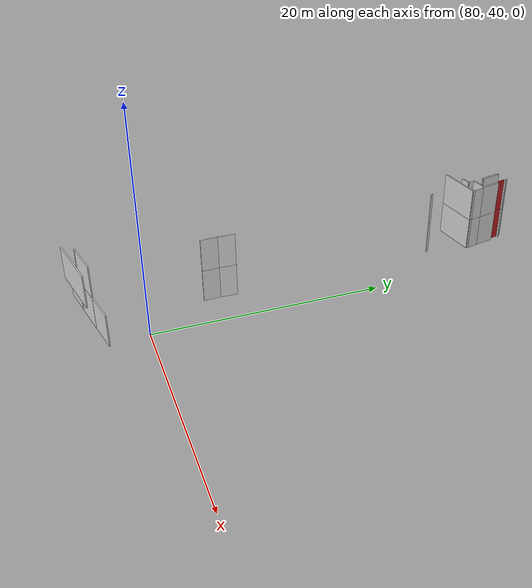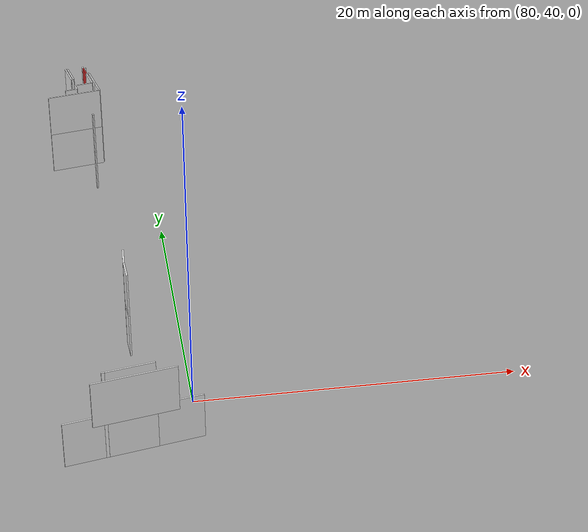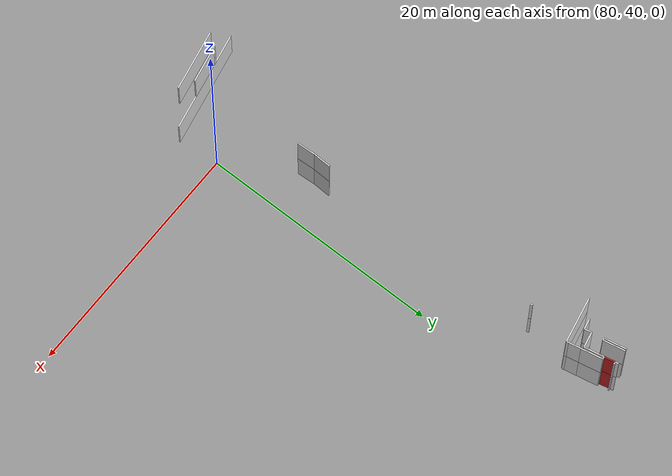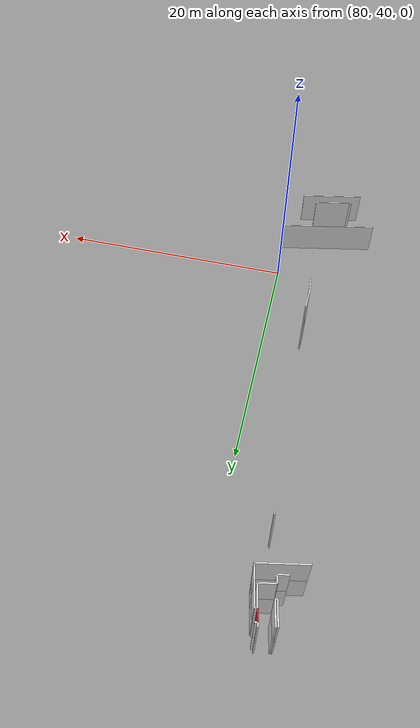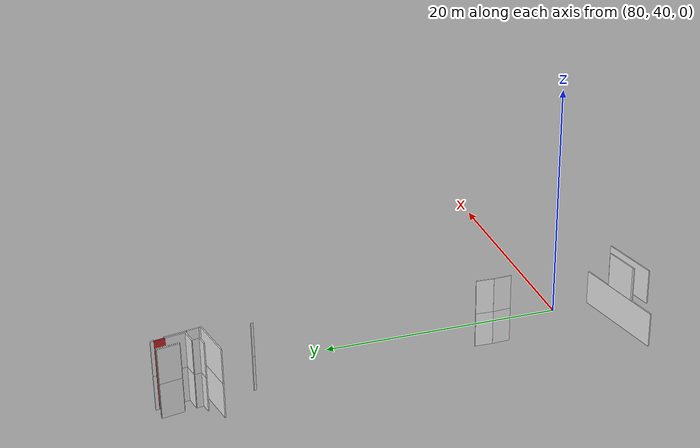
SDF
<sdf version="1.6">
 <world name="default">
  <model name="wall_75.8_74.0_1.5">
   <static>true</static>
   <pose>75.83999999999651 74.0 1.5 0 0 -1.3690339824572944</pose>
   <link name="link">
    <visual name="visual">
     <geometry><box><size>0.8982204628045334 0.1 3</size></box></geometry>
     <material>
      <script><uri>file://media/materials/scripts/gazebo.material</uri><name>Gazebo/Red</name></script>
     </material>
    </visual>
    <collision name="collision"><geometry><box><size>0.8982204628045334 0.1 3</size></box></geometry></collision>
   </link>
  </model>
  <model name="wall_75.8_74.0_4.5">
   <static>true</static>
   <pose>75.83999999999651 74.0 4.5 0 0 -1.3690339824572944</pose>
   <link name="link">
    <visual name="visual">
     <geometry><box><size>0.8982204628045334 0.1 3</size></box></geometry>
     <material>
      <script><uri>file://media/materials/scripts/gazebo.material</uri><name>Gazebo/Red</name></script>
     </material>
    </visual>
    <collision name="collision"><geometry><box><size>0.8982204628045334 0.1 3</size></box></geometry></collision>
   </link>
  </model>
  <model name="wall_75.7_74.6_1.5">
   <static>true</static>
   <pose>75.72000000000116 74.58499999996275 1.5 0 0 1.7748143063542596</pose>
   <link name="link">
    <visual name="visual">
     <geometry><box><size>0.2961418579352255 0.1 3</size></box></geometry>
     <material>
      <script><uri>file://media/materials/scripts/gazebo.material</uri><name>Gazebo/White</name></script>
     </material>
    </visual>
    <collision name="collision"><geometry><box><size>0.2961418579352255 0.1 3</size></box></geometry></collision>
   </link>
  </model>
  <model name="wall_74.8_73.6_1.5">
   <static>true</static>
   <pose>74.76000000000931 73.60999999986961 1.5 0 0 -1.3734007669325783</pose>
   <link name="link">
    <visual name="visual">
     <geometry><box><size>1.8356470247080154 0.1 3</size></box></geometry>
     <material>
      <script><uri>file://media/materials/scripts/gazebo.material</uri><name>Gazebo/White</name></script>
     </material>
    </visual>
    <collision name="collision"><geometry><box><size>1.8356470247080154 0.1 3</size></box></geometry></collision>
   </link>
  </model>
  <model name="wall_74.9_72.7_1.5">
   <static>true</static>
   <pose>74.86499999999069 72.69500000006519 1.5 0 0 -2.944197095083166</pose>
   <link name="link">
    <visual name="visual">
     <geometry><box><size>0.15297058539043204 0.1 3</size></box></geometry>
     <material>
      <script><uri>file://media/materials/scripts/gazebo.material</uri><name>Gazebo/White</name></script>
     </material>
    </visual>
    <collision name="collision"><geometry><box><size>0.15297058539043204 0.1 3</size></box></geometry></collision>
   </link>
  </model>
  <model name="wall_74.6_73.6_1.5">
   <static>true</static>
   <pose>74.60999999998603 73.5800000000745 1.5 0 0 1.7681918866572148</pose>
   <link name="link">
    <visual name="visual">
     <geometry><box><size>1.8356470247080154 0.1 3</size></box></geometry>
     <material>
      <script><uri>file://media/materials/scripts/gazebo.material</uri><name>Gazebo/White</name></script>
     </material>
    </visual>
    <collision name="collision"><geometry><box><size>1.8356470247080154 0.1 3</size></box></geometry></collision>
   </link>
  </model>
  <model name="wall_74.7_71.0_1.5">
   <static>true</static>
   <pose>74.67499999998836 71.02499999990687 1.5 0 0 0.19739555977086584</pose>
   <link name="link">
    <visual name="visual">
     <geometry><box><size>0.8668333172733308 0.1 3</size></box></geometry>
     <material>
      <script><uri>file://media/materials/scripts/gazebo.material</uri><name>Gazebo/White</name></script>
     </material>
    </visual>
    <collision name="collision"><geometry><box><size>0.8668333172733308 0.1 3</size></box></geometry></collision>
   </link>
  </model>
  <model name="wall_75.0_71.4_1.5">
   <static>true</static>
   <pose>75.03999999997905 71.40500000002794 1.5 0 0 1.7714492040023821</pose>
   <link name="link">
    <visual name="visual">
     <geometry><box><size>0.6020797292489833 0.1 3</size></box></geometry>
     <material>
      <script><uri>file://media/materials/scripts/gazebo.material</uri><name>Gazebo/White</name></script>
     </material>
    </visual>
    <collision name="collision"><geometry><box><size>0.6020797292489833 0.1 3</size></box></geometry></collision>
   </link>
  </model>
  <model name="wall_75.6_71.8_1.5">
   <static>true</static>
   <pose>75.61499999999069 71.82500000018626 1.5 0 0 0.1943652660922386</pose>
   <link name="link">
    <visual name="visual">
     <geometry><box><size>1.2943724348298333 0.1 3</size></box></geometry>
     <material>
      <script><uri>file://media/materials/scripts/gazebo.material</uri><name>Gazebo/White</name></script>
     </material>
    </visual>
    <collision name="collision"><geometry><box><size>1.2943724348298333 0.1 3</size></box></geometry></collision>
   </link>
  </model>
  <model name="wall_76.1_72.8_1.5">
   <static>true</static>
   <pose>76.08999999999651 72.75500000012107 1.5 0 0 1.7669971441026713</pose>
   <link name="link">
    <visual name="visual">
     <geometry><box><size>1.6414932225216863 0.1 3</size></box></geometry>
     <material>
      <script><uri>file://media/materials/scripts/gazebo.material</uri><name>Gazebo/White</name></script>
     </material>
    </visual>
    <collision name="collision"><geometry><box><size>1.6414932225216863 0.1 3</size></box></geometry></collision>
   </link>
  </model>
  <model name="wall_75.9_74.5_1.5">
   <static>true</static>
   <pose>75.85000000000582 74.45999999996275 1.5 0 0 -2.9441970935720057</pose>
   <link name="link">
    <visual name="visual">
     <geometry><box><size>0.20396078056243275 0.1 3</size></box></geometry>
     <material>
      <script><uri>file://media/materials/scripts/gazebo.material</uri><name>Gazebo/White</name></script>
     </material>
    </visual>
    <collision name="collision"><geometry><box><size>0.20396078056243275 0.1 3</size></box></geometry></collision>
   </link>
  </model>
  <model name="wall_76.0_73.6_1.5">
   <static>true</static>
   <pose>76.02499999999418 73.5800000000745 1.5 0 0 0.20749622662047904</pose>
   <link name="link">
    <visual name="visual">
     <geometry><box><size>0.19416487839942884 0.1 3</size></box></geometry>
     <material>
      <script><uri>file://media/materials/scripts/gazebo.material</uri><name>Gazebo/White</name></script>
     </material>
    </visual>
    <collision name="collision"><geometry><box><size>0.19416487839942884 0.1 3</size></box></geometry></collision>
   </link>
  </model>
  <model name="wall_76.3_72.7_1.5">
   <static>true</static>
   <pose>76.2949999999837 72.71999999997206 1.5 0 0 -1.374493662723798</pose>
   <link name="link">
    <visual name="visual">
     <geometry><box><size>1.7944637084198858 0.1 3</size></box></geometry>
     <material>
      <script><uri>file://media/materials/scripts/gazebo.material</uri><name>Gazebo/White</name></script>
     </material>
    </visual>
    <collision name="collision"><geometry><box><size>1.7944637084198858 0.1 3</size></box></geometry></collision>
   </link>
  </model>
  <model name="wall_76.6_71.3_1.5">
   <static>true</static>
   <pose>76.56999999997788 71.3499999998603 1.5 0 0 -1.3694792184051279</pose>
   <link name="link">
    <visual name="visual">
     <geometry><box><size>1.0001999799880765 0.1 3</size></box></geometry>
     <material>
      <script><uri>file://media/materials/scripts/gazebo.material</uri><name>Gazebo/White</name></script>
     </material>
    </visual>
    <collision name="collision"><geometry><box><size>1.0001999799880765 0.1 3</size></box></geometry></collision>
   </link>
  </model>
  <model name="wall_76.7_70.8_1.5">
   <static>true</static>
   <pose>76.69000000000233 70.76499999989755 1.5 0 0 -1.3633001001126588</pose>
   <link name="link">
    <visual name="visual">
     <geometry><box><size>0.19416487834246976 0.1 3</size></box></geometry>
     <material>
      <script><uri>file://media/materials/scripts/gazebo.material</uri><name>Gazebo/White</name></script>
     </material>
    </visual>
    <collision name="collision"><geometry><box><size>0.19416487834246976 0.1 3</size></box></geometry></collision>
   </link>
  </model>
  <model name="wall_74.8_70.3_1.5">
   <static>true</static>
   <pose>74.83999999999651 70.30000000004657 1.5 0 0 0.19533794952017633</pose>
   <link name="link">
    <visual name="visual">
     <geometry><box><size>3.8125057377015654 0.1 3</size></box></geometry>
     <material>
      <script><uri>file://media/materials/scripts/gazebo.material</uri><name>Gazebo/White</name></script>
     </material>
    </visual>
    <collision name="collision"><geometry><box><size>3.8125057377015654 0.1 3</size></box></geometry></collision>
   </link>
  </model>
  <model name="wall_76.3_35.0_4.5">
   <static>true</static>
   <pose>76.31500000000233 34.97500000009313 4.5 0 0 0.1935846027304586</pose>
   <link name="link">
    <visual name="visual">
     <geometry><box><size>5.146124755669345 0.1 3</size></box></geometry>
     <material>
      <script><uri>file://media/materials/scripts/gazebo.material</uri><name>Gazebo/White</name></script>
     </material>
    </visual>
    <collision name="collision"><geometry><box><size>5.146124755669345 0.1 3</size></box></geometry></collision>
   </link>
  </model>
  <model name="wall_76.0_66.9_1.5">
   <static>true</static>
   <pose>76.00500000000466 66.89999999990687 1.5 0 0 -1.3258176636680326</pose>
   <link name="link">
    <visual name="visual">
     <geometry><box><size>0.2061552814728801 0.1 3</size></box></geometry>
     <material>
      <script><uri>file://media/materials/scripts/gazebo.material</uri><name>Gazebo/White</name></script>
     </material>
    </visual>
    <collision name="collision"><geometry><box><size>0.2061552814728801 0.1 3</size></box></geometry></collision>
   </link>
  </model>
  <model name="wall_76.7_47.6_1.5">
   <static>true</static>
   <pose>76.6700000000128 47.61499999999069 1.5 0 0 -1.6110430385750105</pose>
   <link name="link">
    <visual name="visual">
     <geometry><box><size>1.4912075641164553 0.1 3</size></box></geometry>
     <material>
      <script><uri>file://media/materials/scripts/gazebo.material</uri><name>Gazebo/White</name></script>
     </material>
    </visual>
    <collision name="collision"><geometry><box><size>1.4912075641164553 0.1 3</size></box></geometry></collision>
   </link>
  </model>
  <model name="wall_76.7_46.1_1.5">
   <static>true</static>
   <pose>76.67999999999302 46.11499999999069 1.5 0 0 -1.5178656809449116</pose>
   <link name="link">
    <visual name="visual">
     <geometry><box><size>1.5121177205246188 0.1 3</size></box></geometry>
     <material>
      <script><uri>file://media/materials/scripts/gazebo.material</uri><name>Gazebo/White</name></script>
     </material>
    </visual>
    <collision name="collision"><geometry><box><size>1.5121177205246188 0.1 3</size></box></geometry></collision>
   </link>
  </model>
  <model name="wall_76.1_35.8_1.5">
   <static>true</static>
   <pose>76.14999999999418 35.79000000003725 1.5 0 0 -2.9468148887829875</pose>
   <link name="link">
    <visual name="visual">
     <geometry><box><size>2.996664812771044 0.1 3</size></box></geometry>
     <material>
      <script><uri>file://media/materials/scripts/gazebo.material</uri><name>Gazebo/White</name></script>
     </material>
    </visual>
    <collision name="collision"><geometry><box><size>2.996664812771044 0.1 3</size></box></geometry></collision>
   </link>
  </model>
  <model name="wall_74.6_35.5_1.5">
   <static>true</static>
   <pose>74.58499999999185 35.485000000102445 1.5 0 0 -2.9849907776618085</pose>
   <link name="link">
    <visual name="visual">
     <geometry><box><size>0.19235384058705793 0.1 3</size></box></geometry>
     <material>
      <script><uri>file://media/materials/scripts/gazebo.material</uri><name>Gazebo/White</name></script>
     </material>
    </visual>
    <collision name="collision"><geometry><box><size>0.19235384058705793 0.1 3</size></box></geometry></collision>
   </link>
  </model>
  <model name="wall_76.2_35.8_1.5">
   <static>true</static>
   <pose>76.22000000000116 35.81500000017695 1.5 0 0 0.19577706414235704</pose>
   <link name="link">
    <visual name="visual">
     <geometry><box><size>8.482033954176845 0.1 3</size></box></geometry>
     <material>
      <script><uri>file://media/materials/scripts/gazebo.material</uri><name>Gazebo/White</name></script>
     </material>
    </visual>
    <collision name="collision"><geometry><box><size>8.482033954176845 0.1 3</size></box></geometry></collision>
   </link>
  </model>
  <model name="wall_75.7_74.6_4.5">
   <static>true</static>
   <pose>75.72000000000116 74.58499999996275 4.5 0 0 1.7748143063542596</pose>
   <link name="link">
    <visual name="visual">
     <geometry><box><size>0.2961418579352255 0.1 3</size></box></geometry>
     <material>
      <script><uri>file://media/materials/scripts/gazebo.material</uri><name>Gazebo/White</name></script>
     </material>
    </visual>
    <collision name="collision"><geometry><box><size>0.2961418579352255 0.1 3</size></box></geometry></collision>
   </link>
  </model>
  <model name="wall_74.8_73.6_4.5">
   <static>true</static>
   <pose>74.76000000000931 73.60999999986961 4.5 0 0 -1.3734007669325783</pose>
   <link name="link">
    <visual name="visual">
     <geometry><box><size>1.8356470247080154 0.1 3</size></box></geometry>
     <material>
      <script><uri>file://media/materials/scripts/gazebo.material</uri><name>Gazebo/White</name></script>
     </material>
    </visual>
    <collision name="collision"><geometry><box><size>1.8356470247080154 0.1 3</size></box></geometry></collision>
   </link>
  </model>
  <model name="wall_74.9_72.7_4.5">
   <static>true</static>
   <pose>74.86499999999069 72.69500000006519 4.5 0 0 -2.944197095083166</pose>
   <link name="link">
    <visual name="visual">
     <geometry><box><size>0.15297058539043204 0.1 3</size></box></geometry>
     <material>
      <script><uri>file://media/materials/scripts/gazebo.material</uri><name>Gazebo/White</name></script>
     </material>
    </visual>
    <collision name="collision"><geometry><box><size>0.15297058539043204 0.1 3</size></box></geometry></collision>
   </link>
  </model>
  <model name="wall_74.6_73.6_4.5">
   <static>true</static>
   <pose>74.60999999998603 73.5800000000745 4.5 0 0 1.7681918866572148</pose>
   <link name="link">
    <visual name="visual">
     <geometry><box><size>1.8356470247080154 0.1 3</size></box></geometry>
     <material>
      <script><uri>file://media/materials/scripts/gazebo.material</uri><name>Gazebo/White</name></script>
     </material>
    </visual>
    <collision name="collision"><geometry><box><size>1.8356470247080154 0.1 3</size></box></geometry></collision>
   </link>
  </model>
  <model name="wall_74.7_71.0_4.5">
   <static>true</static>
   <pose>74.67499999998836 71.02499999990687 4.5 0 0 0.19739555977086584</pose>
   <link name="link">
    <visual name="visual">
     <geometry><box><size>0.8668333172733308 0.1 3</size></box></geometry>
     <material>
      <script><uri>file://media/materials/scripts/gazebo.material</uri><name>Gazebo/White</name></script>
     </material>
    </visual>
    <collision name="collision"><geometry><box><size>0.8668333172733308 0.1 3</size></box></geometry></collision>
   </link>
  </model>
  <model name="wall_75.0_71.4_4.5">
   <static>true</static>
   <pose>75.03999999997905 71.40500000002794 4.5 0 0 1.7714492040023821</pose>
   <link name="link">
    <visual name="visual">
     <geometry><box><size>0.6020797292489833 0.1 3</size></box></geometry>
     <material>
      <script><uri>file://media/materials/scripts/gazebo.material</uri><name>Gazebo/White</name></script>
     </material>
    </visual>
    <collision name="collision"><geometry><box><size>0.6020797292489833 0.1 3</size></box></geometry></collision>
   </link>
  </model>
  <model name="wall_75.6_71.8_4.5">
   <static>true</static>
   <pose>75.61499999999069 71.82500000018626 4.5 0 0 0.1943652660922386</pose>
   <link name="link">
    <visual name="visual">
     <geometry><box><size>1.2943724348298333 0.1 3</size></box></geometry>
     <material>
      <script><uri>file://media/materials/scripts/gazebo.material</uri><name>Gazebo/White</name></script>
     </material>
    </visual>
    <collision name="collision"><geometry><box><size>1.2943724348298333 0.1 3</size></box></geometry></collision>
   </link>
  </model>
  <model name="wall_76.1_72.8_4.5">
   <static>true</static>
   <pose>76.08999999999651 72.75500000012107 4.5 0 0 1.7669971441026713</pose>
   <link name="link">
    <visual name="visual">
     <geometry><box><size>1.6414932225216863 0.1 3</size></box></geometry>
     <material>
      <script><uri>file://media/materials/scripts/gazebo.material</uri><name>Gazebo/White</name></script>
     </material>
    </visual>
    <collision name="collision"><geometry><box><size>1.6414932225216863 0.1 3</size></box></geometry></collision>
   </link>
  </model>
  <model name="wall_75.9_74.5_4.5">
   <static>true</static>
   <pose>75.85000000000582 74.45999999996275 4.5 0 0 -2.9441970935720057</pose>
   <link name="link">
    <visual name="visual">
     <geometry><box><size>0.20396078056243275 0.1 3</size></box></geometry>
     <material>
      <script><uri>file://media/materials/scripts/gazebo.material</uri><name>Gazebo/White</name></script>
     </material>
    </visual>
    <collision name="collision"><geometry><box><size>0.20396078056243275 0.1 3</size></box></geometry></collision>
   </link>
  </model>
  <model name="wall_76.0_73.6_4.5">
   <static>true</static>
   <pose>76.02499999999418 73.5800000000745 4.5 0 0 0.20749622662047904</pose>
   <link name="link">
    <visual name="visual">
     <geometry><box><size>0.19416487839942884 0.1 3</size></box></geometry>
     <material>
      <script><uri>file://media/materials/scripts/gazebo.material</uri><name>Gazebo/White</name></script>
     </material>
    </visual>
    <collision name="collision"><geometry><box><size>0.19416487839942884 0.1 3</size></box></geometry></collision>
   </link>
  </model>
  <model name="wall_76.3_72.7_4.5">
   <static>true</static>
   <pose>76.2949999999837 72.71999999997206 4.5 0 0 -1.374493662723798</pose>
   <link name="link">
    <visual name="visual">
     <geometry><box><size>1.7944637084198858 0.1 3</size></box></geometry>
     <material>
      <script><uri>file://media/materials/scripts/gazebo.material</uri><name>Gazebo/White</name></script>
     </material>
    </visual>
    <collision name="collision"><geometry><box><size>1.7944637084198858 0.1 3</size></box></geometry></collision>
   </link>
  </model>
  <model name="wall_76.6_71.3_4.5">
   <static>true</static>
   <pose>76.56999999997788 71.3499999998603 4.5 0 0 -1.3694792184051279</pose>
   <link name="link">
    <visual name="visual">
     <geometry><box><size>1.0001999799880765 0.1 3</size></box></geometry>
     <material>
      <script><uri>file://media/materials/scripts/gazebo.material</uri><name>Gazebo/White</name></script>
     </material>
    </visual>
    <collision name="collision"><geometry><box><size>1.0001999799880765 0.1 3</size></box></geometry></collision>
   </link>
  </model>
  <model name="wall_76.7_70.8_4.5">
   <static>true</static>
   <pose>76.69000000000233 70.76499999989755 4.5 0 0 -1.3633001001126588</pose>
   <link name="link">
    <visual name="visual">
     <geometry><box><size>0.19416487834246976 0.1 3</size></box></geometry>
     <material>
      <script><uri>file://media/materials/scripts/gazebo.material</uri><name>Gazebo/White</name></script>
     </material>
    </visual>
    <collision name="collision"><geometry><box><size>0.19416487834246976 0.1 3</size></box></geometry></collision>
   </link>
  </model>
  <model name="wall_74.8_70.3_4.5">
   <static>true</static>
   <pose>74.83999999999651 70.30000000004657 4.5 0 0 0.19533794952017633</pose>
   <link name="link">
    <visual name="visual">
     <geometry><box><size>3.8125057377015654 0.1 3</size></box></geometry>
     <material>
      <script><uri>file://media/materials/scripts/gazebo.material</uri><name>Gazebo/White</name></script>
     </material>
    </visual>
    <collision name="collision"><geometry><box><size>3.8125057377015654 0.1 3</size></box></geometry></collision>
   </link>
  </model>
  <model name="wall_76.0_66.9_4.5">
   <static>true</static>
   <pose>76.00500000000466 66.89999999990687 4.5 0 0 -1.3258176636680326</pose>
   <link name="link">
    <visual name="visual">
     <geometry><box><size>0.2061552814728801 0.1 3</size></box></geometry>
     <material>
      <script><uri>file://media/materials/scripts/gazebo.material</uri><name>Gazebo/White</name></script>
     </material>
    </visual>
    <collision name="collision"><geometry><box><size>0.2061552814728801 0.1 3</size></box></geometry></collision>
   </link>
  </model>
  <model name="wall_76.7_47.6_4.5">
   <static>true</static>
   <pose>76.6700000000128 47.61499999999069 4.5 0 0 -1.6110430385750105</pose>
   <link name="link">
    <visual name="visual">
     <geometry><box><size>1.4912075641164553 0.1 3</size></box></geometry>
     <material>
      <script><uri>file://media/materials/scripts/gazebo.material</uri><name>Gazebo/White</name></script>
     </material>
    </visual>
    <collision name="collision"><geometry><box><size>1.4912075641164553 0.1 3</size></box></geometry></collision>
   </link>
  </model>
  <model name="wall_76.7_46.1_4.5">
   <static>true</static>
   <pose>76.67999999999302 46.11499999999069 4.5 0 0 -1.5178656809449116</pose>
   <link name="link">
    <visual name="visual">
     <geometry><box><size>1.5121177205246188 0.1 3</size></box></geometry>
     <material>
      <script><uri>file://media/materials/scripts/gazebo.material</uri><name>Gazebo/White</name></script>
     </material>
    </visual>
    <collision name="collision"><geometry><box><size>1.5121177205246188 0.1 3</size></box></geometry></collision>
   </link>
  </model>
  <model name="wall_76.1_35.8_4.5">
   <static>true</static>
   <pose>76.14999999999418 35.79000000003725 4.5 0 0 -2.9468148887829875</pose>
   <link name="link">
    <visual name="visual">
     <geometry><box><size>2.996664812771044 0.1 3</size></box></geometry>
     <material>
      <script><uri>file://media/materials/scripts/gazebo.material</uri><name>Gazebo/White</name></script>
     </material>
    </visual>
    <collision name="collision"><geometry><box><size>2.996664812771044 0.1 3</size></box></geometry></collision>
   </link>
  </model>
  <model name="wall_74.6_35.5_4.5">
   <static>true</static>
   <pose>74.58499999999185 35.485000000102445 4.5 0 0 -2.9849907776618085</pose>
   <link name="link">
    <visual name="visual">
     <geometry><box><size>0.19235384058705793 0.1 3</size></box></geometry>
     <material>
      <script><uri>file://media/materials/scripts/gazebo.material</uri><name>Gazebo/White</name></script>
     </material>
    </visual>
    <collision name="collision"><geometry><box><size>0.19235384058705793 0.1 3</size></box></geometry></collision>
   </link>
  </model>
 </world>
</sdf>
